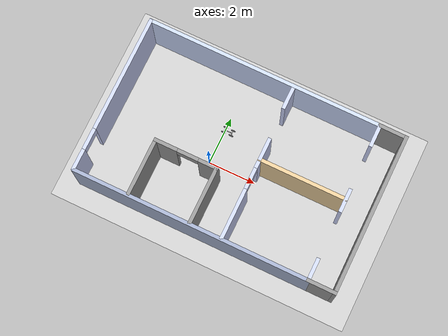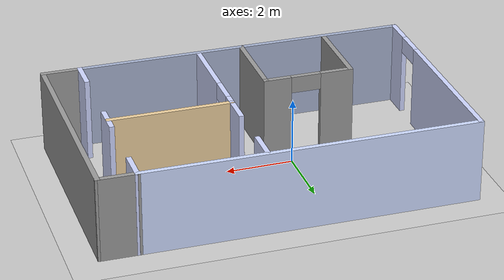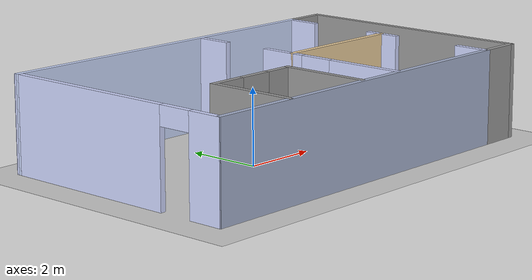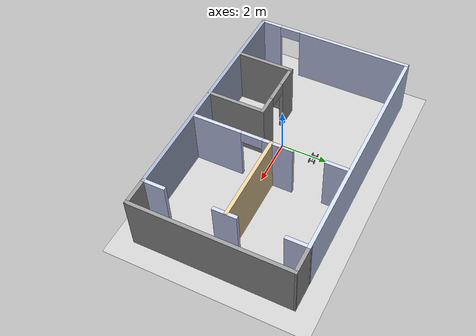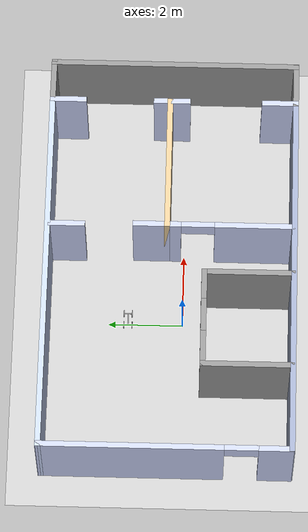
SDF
<sdf version="1.6">
 <world name="default">
  <model name="ground_plane">
   <static>1</static>
   <link name="link">
    <collision name="collision">
     <geometry><plane><normal>0 0 1</normal><size>100 100</size></plane></geometry>
     <surface><friction><ode><mu>100</mu><mu2>50</mu2></ode></friction></surface>
    </collision>
    <visual name="visual">
     <cast_shadows>0</cast_shadows>
     <geometry><plane><normal>0 0 1</normal><size>100 100</size></plane></geometry>
     <material>
      <script><uri>file://media/materials/scripts/gazebo.material</uri><name>Gazebo/Grey</name></script>
     </material>
    </visual>
   </link>
  </model>
  <model name="mybuilding">
   <pose>1.20558 0.366054 0 0 -0 0</pose>
   <link name="Wall_0">
    <collision name="Wall_0_Collision">
     <geometry><box><size>10.02 0.15 2.5</size></box></geometry>
     <pose>0 0 1.25 0 -0 0</pose>
    </collision>
    <visual name="Wall_0_Visual">
     <pose>0 0 1.25 0 -0 0</pose>
     <geometry><box><size>10.02 0.15 2.5</size></box></geometry>
     <material>
      <script><uri>file://media/materials/scripts/gazebo.material</uri><name>Gazebo/Grey</name></script>
      <ambient>0.803922 0.858824 1 1</ambient>
     </material>
     <meta><layer>0</layer></meta>
    </visual>
    <pose>-0.550236 3.30489 0 0 0 -0.003082</pose>
   </link>
   <link name="Wall_1">
    <collision name="Wall_1_Collision">
     <geometry><box><size>1 0.15 2.5</size></box></geometry>
     <pose>0 0 1.25 0 -0 0</pose>
    </collision>
    <visual name="Wall_1_Visual">
     <pose>0 0 1.25 0 -0 0</pose>
     <geometry><box><size>1 0.15 2.5</size></box></geometry>
     <material>
      <script><uri>file://media/materials/scripts/gazebo.material</uri><name>Gazebo/Grey</name></script>
      <ambient>0.811765 0.843137 1 1</ambient>
     </material>
     <meta><layer>0</layer></meta>
    </visual>
    <pose>4.38476 2.86468 0 0 0 -1.5708</pose>
   </link>
   <link name="Wall_12">
    <collision name="Wall_12_Collision">
     <geometry><box><size>1 0.15 2.5</size></box></geometry>
     <pose>0 0 1.25 0 -0 0</pose>
    </collision>
    <visual name="Wall_12_Visual">
     <pose>0 0 1.25 0 -0 0</pose>
     <geometry><box><size>1 0.15 2.5</size></box></geometry>
     <material>
      <script><uri>file://media/materials/scripts/gazebo.material</uri><name>Gazebo/Grey</name></script>
      <ambient>0.811765 0.843137 1 1</ambient>
     </material>
     <meta><layer>0</layer></meta>
    </visual>
    <pose>4.38476 -2.89532 0 0 0 -1.5708</pose>
   </link>
   <link name="Wall_14">
    <collision name="Wall_14_Collision">
     <geometry><box><size>10 0.15 2.5</size></box></geometry>
     <pose>0 0 1.25 0 -0 0</pose>
    </collision>
    <visual name="Wall_14_Visual">
     <pose>0 0 1.25 0 -0 0</pose>
     <geometry><box><size>10 0.15 2.5</size></box></geometry>
     <material>
      <script><uri>file://media/materials/scripts/gazebo.material</uri><name>Gazebo/Grey</name></script>
      <ambient>0.65098 0.694118 0.807843 1</ambient>
     </material>
     <meta><layer>0</layer></meta>
    </visual>
    <pose>-0.540236 -3.32032 0 0 -0 3.14159</pose>
   </link>
   <link name="Wall_16">
    <collision name="Wall_16_Collision">
     <geometry><box><size>2.5 0.15 2.5</size></box></geometry>
     <pose>0 0 1.25 0 -0 0</pose>
    </collision>
    <visual name="Wall_16_Visual">
     <pose>0 0 1.25 0 -0 0</pose>
     <geometry><box><size>2.5 0.15 2.5</size></box></geometry>
     <material>
      <script><uri>file://media/materials/scripts/gazebo.material</uri><name>Gazebo/Grey</name></script>
      <ambient>1 1 1 1</ambient>
     </material>
     <meta><layer>0</layer></meta>
    </visual>
    <pose>-3.16618 -2.10913 0 0 -0 1.5708</pose>
   </link>
   <link name="Wall_17">
    <pose>-1.86618 -0.934127 0 0 -0 0</pose>
    <visual name="Wall_17_Visual_0">
     <pose>-0.873137 0 1.25 0 -0 0</pose>
     <geometry><box><size>1.00372 0.15 2.5</size></box></geometry>
     <material>
      <script><uri>file://media/materials/scripts/gazebo.material</uri><name>Gazebo/Grey</name></script>
      <ambient>1 1 1 1</ambient>
     </material>
     <meta><layer>0</layer></meta>
    </visual>
    <collision name="Wall_17_Collision_0">
     <geometry><box><size>1.00372 0.15 2.5</size></box></geometry>
     <pose>-0.873137 0 1.25 0 -0 0</pose>
    </collision>
    <visual name="Wall_17_Visual_1">
     <pose>0.951863 0 1.25 0 -0 0</pose>
     <geometry><box><size>0.846275 0.15 2.5</size></box></geometry>
     <material>
      <script><uri>file://media/materials/scripts/gazebo.material</uri><name>Gazebo/Grey</name></script>
      <ambient>1 1 1 1</ambient>
     </material>
     <meta><layer>0</layer></meta>
    </visual>
    <collision name="Wall_17_Collision_1">
     <geometry><box><size>0.846275 0.15 2.5</size></box></geometry>
     <pose>0.951863 0 1.25 0 -0 0</pose>
    </collision>
    <visual name="Wall_17_Visual_2">
     <pose>0.078725 0 2.25 0 -0 0</pose>
     <geometry><box><size>0.9 0.15 0.5</size></box></geometry>
     <material>
      <script><uri>file://media/materials/scripts/gazebo.material</uri><name>Gazebo/Grey</name></script>
      <ambient>1 1 1 1</ambient>
     </material>
     <meta><layer>0</layer></meta>
    </visual>
    <collision name="Wall_17_Collision_2">
     <geometry><box><size>0.9 0.15 0.5</size></box></geometry>
     <pose>0.078725 0 2.25 0 -0 0</pose>
    </collision>
   </link>
   <link name="Wall_18">
    <collision name="Wall_18_Collision">
     <geometry><box><size>2.5 0.15 2.5</size></box></geometry>
     <pose>0 0 1.25 0 -0 0</pose>
    </collision>
    <visual name="Wall_18_Visual">
     <pose>0 0 1.25 0 -0 0</pose>
     <geometry><box><size>2.5 0.15 2.5</size></box></geometry>
     <material>
      <script><uri>file://media/materials/scripts/gazebo.material</uri><name>Gazebo/Grey</name></script>
      <ambient>1 1 1 1</ambient>
     </material>
     <meta><layer>0</layer></meta>
    </visual>
    <pose>-0.566179 -2.10913 0 0 0 -1.5708</pose>
   </link>
   <link name="Wall_20">
    <collision name="Wall_20_Collision">
     <geometry><box><size>3.75 0.15 2.5</size></box></geometry>
     <pose>0 0 1.25 0 -0 0</pose>
    </collision>
    <visual name="Wall_20_Visual">
     <pose>0 0 1.25 0 -0 0</pose>
     <geometry><box><size>3.75 0.15 2.5</size></box></geometry>
     <material>
      <script><uri>file://media/materials/scripts/gazebo.material</uri><name>Gazebo/Grey</name></script>
      <ambient>0.921569 0.807843 0.615686 1</ambient>
     </material>
     <meta><layer>0</layer></meta>
    </visual>
    <pose>2.57204 0.091456 0 0 -0 3.14159</pose>
   </link>
   <link name="Wall_21">
    <pose>0.772038 -1.58354 0 0 0 -1.5708</pose>
    <visual name="Wall_21_Visual_0">
     <pose>-1.52648 0 1.25 0 -0 0</pose>
     <geometry><box><size>0.447033 0.15 2.5</size></box></geometry>
     <material>
      <script><uri>file://media/materials/scripts/gazebo.material</uri><name>Gazebo/Grey</name></script>
      <ambient>0.811765 0.843137 1 1</ambient>
     </material>
     <meta><layer>0</layer></meta>
    </visual>
    <collision name="Wall_21_Collision_0">
     <geometry><box><size>0.447033 0.15 2.5</size></box></geometry>
     <pose>-1.52648 0 1.25 0 -0 0</pose>
    </collision>
    <visual name="Wall_21_Visual_1">
     <pose>0.673516 0 1.25 0 -0 0</pose>
     <geometry><box><size>2.15297 0.15 2.5</size></box></geometry>
     <material>
      <script><uri>file://media/materials/scripts/gazebo.material</uri><name>Gazebo/Grey</name></script>
      <ambient>0.811765 0.843137 1 1</ambient>
     </material>
     <meta><layer>0</layer></meta>
    </visual>
    <collision name="Wall_21_Collision_1">
     <geometry><box><size>2.15297 0.15 2.5</size></box></geometry>
     <pose>0.673516 0 1.25 0 -0 0</pose>
    </collision>
    <visual name="Wall_21_Visual_2">
     <pose>-0.852967 0 2.25 0 -0 0</pose>
     <geometry><box><size>0.9 0.15 0.5</size></box></geometry>
     <material>
      <script><uri>file://media/materials/scripts/gazebo.material</uri><name>Gazebo/Grey</name></script>
      <ambient>0.811765 0.843137 1 1</ambient>
     </material>
     <meta><layer>0</layer></meta>
    </visual>
    <collision name="Wall_21_Collision_2">
     <geometry><box><size>0.9 0.15 0.5</size></box></geometry>
     <pose>-0.852967 0 2.25 0 -0 0</pose>
    </collision>
   </link>
   <link name="Wall_23">
    <collision name="Wall_23_Collision">
     <geometry><box><size>1 0.15 2.5</size></box></geometry>
     <pose>0 0 1.25 0 -0 0</pose>
    </collision>
    <visual name="Wall_23_Visual">
     <pose>0 0 1.25 0 -0 0</pose>
     <geometry><box><size>1 0.15 2.5</size></box></geometry>
     <material>
      <script><uri>file://media/materials/scripts/gazebo.material</uri><name>Gazebo/Grey</name></script>
      <ambient>0.811765 0.843137 1 1</ambient>
     </material>
     <meta><layer>0</layer></meta>
    </visual>
    <pose>0.772038 0.516456 0 0 -0 1.5708</pose>
   </link>
   <link name="Wall_25">
    <collision name="Wall_25_Collision">
     <geometry><box><size>1 0.15 2.5</size></box></geometry>
     <pose>0 0 1.25 0 -0 0</pose>
    </collision>
    <visual name="Wall_25_Visual">
     <pose>0 0 1.25 0 -0 0</pose>
     <geometry><box><size>1 0.15 2.5</size></box></geometry>
     <material>
      <script><uri>file://media/materials/scripts/gazebo.material</uri><name>Gazebo/Grey</name></script>
      <ambient>0.811765 0.843137 1 1</ambient>
     </material>
     <meta><layer>0</layer></meta>
    </visual>
    <pose>0.732868 2.78991 0 0 0 -1.5708</pose>
   </link>
   <link name="Wall_27">
    <collision name="Wall_27_Collision">
     <geometry><box><size>1.25 0.15 2.5</size></box></geometry>
     <pose>0 0 1.25 0 -0 0</pose>
    </collision>
    <visual name="Wall_27_Visual">
     <pose>0 0 1.25 0 -0 0</pose>
     <geometry><box><size>1.25 0.15 2.5</size></box></geometry>
     <material>
      <script><uri>file://media/materials/scripts/gazebo.material</uri><name>Gazebo/Grey</name></script>
      <ambient>1 1 1 1</ambient>
     </material>
     <meta><layer>0</layer></meta>
    </visual>
    <pose>4.93476 -3.32032 0 0 -0 0</pose>
   </link>
   <link name="Wall_28">
    <collision name="Wall_28_Collision">
     <geometry><box><size>6.75 0.15 2.5</size></box></geometry>
     <pose>0 0 1.25 0 -0 0</pose>
    </collision>
    <visual name="Wall_28_Visual">
     <pose>0 0 1.25 0 -0 0</pose>
     <geometry><box><size>6.75 0.15 2.5</size></box></geometry>
     <material>
      <script><uri>file://media/materials/scripts/gazebo.material</uri><name>Gazebo/Grey</name></script>
      <ambient>1 1 1 1</ambient>
     </material>
     <meta><layer>0</layer></meta>
    </visual>
    <pose>5.48476 -0.020324 0 0 -0 1.5708</pose>
   </link>
   <link name="Wall_29">
    <collision name="Wall_29_Collision">
     <geometry><box><size>1.25005 0.15 2.5</size></box></geometry>
     <pose>0 0 1.25 0 -0 0</pose>
    </collision>
    <visual name="Wall_29_Visual">
     <pose>0 0 1.25 0 -0 0</pose>
     <geometry><box><size>1.25005 0.15 2.5</size></box></geometry>
     <material>
      <script><uri>file://media/materials/scripts/gazebo.material</uri><name>Gazebo/Grey</name></script>
      <ambient>1 1 1 1</ambient>
     </material>
     <meta><layer>0</layer></meta>
    </visual>
    <pose>4.93476 3.28468 0 0 -0 3.1325</pose>
   </link>
   <link name="Wall_4">
    <collision name="Wall_4_Collision">
     <geometry><box><size>1 0.15 2.5</size></box></geometry>
     <pose>0 0 1.25 0 -0 0</pose>
    </collision>
    <visual name="Wall_4_Visual">
     <pose>0 0 1.25 0 -0 0</pose>
     <geometry><box><size>1 0.15 2.5</size></box></geometry>
     <material>
      <script><uri>file://media/materials/scripts/gazebo.material</uri><name>Gazebo/Grey</name></script>
      <ambient>0.811765 0.843137 1 1</ambient>
     </material>
     <meta><layer>0</layer></meta>
    </visual>
    <pose>4.38476 0.040676 0 0 0 -1.5708</pose>
   </link>
   <link name="Wall_7">
    <pose>-5.48524 0.004885 0 0 0 -1.5708</pose>
    <visual name="Wall_7_Visual_0">
     <pose>-0.910605 0 1.25 0 -0 0</pose>
     <geometry><box><size>4.92879 0.15 2.5</size></box></geometry>
     <material>
      <script><uri>file://media/materials/scripts/gazebo.material</uri><name>Gazebo/Grey</name></script>
      <ambient>0.811765 0.843137 1 1</ambient>
     </material>
     <meta><layer>0</layer></meta>
    </visual>
    <collision name="Wall_7_Collision_0">
     <geometry><box><size>4.92879 0.15 2.5</size></box></geometry>
     <pose>-0.910605 0 1.25 0 -0 0</pose>
    </collision>
    <visual name="Wall_7_Visual_1">
     <pose>2.91439 0 1.25 0 -0 0</pose>
     <geometry><box><size>0.92121 0.15 2.5</size></box></geometry>
     <material>
      <script><uri>file://media/materials/scripts/gazebo.material</uri><name>Gazebo/Grey</name></script>
      <ambient>0.811765 0.843137 1 1</ambient>
     </material>
     <meta><layer>0</layer></meta>
    </visual>
    <collision name="Wall_7_Collision_1">
     <geometry><box><size>0.92121 0.15 2.5</size></box></geometry>
     <pose>2.91439 0 1.25 0 -0 0</pose>
    </collision>
    <visual name="Wall_7_Visual_2">
     <pose>2.00379 0 2.25 0 -0 0</pose>
     <geometry><box><size>0.9 0.15 0.5</size></box></geometry>
     <material>
      <script><uri>file://media/materials/scripts/gazebo.material</uri><name>Gazebo/Grey</name></script>
      <ambient>0.811765 0.843137 1 1</ambient>
     </material>
     <meta><layer>0</layer></meta>
    </visual>
    <collision name="Wall_7_Collision_2">
     <geometry><box><size>0.9 0.15 0.5</size></box></geometry>
     <pose>2.00379 0 2.25 0 -0 0</pose>
    </collision>
   </link>
   <static>1</static>
  </model>
  <model name="mycar2">
   <link name="link_2_clone">
    <pose>-0.030624 0.173413 0 1.5707 -0 0</pose>
    <inertial>
     <mass>1</mass>
     <inertia><ixx>0.145833</ixx><ixy>0</ixy><ixz>0</ixz><iyy>0.145833</iyy><iyz>0</iyz><izz>0.125</izz></inertia>
    </inertial>
    <visual name="visual">
     <geometry><cylinder><radius>0.1</radius><length>0.02</length></cylinder></geometry>
     <material>
      <lighting>1</lighting>
      <script><uri>file://media/materials/scripts/gazebo.material</uri><name>Gazebo/Grey</name></script>
      <shader type="pixel"><normal_map>__default__</normal_map></shader>
      <ambient>0.3 0.3 0.3 1</ambient>
      <diffuse>0.7 0.7 0.7 1</diffuse>
      <specular>0.01 0.01 0.01 1</specular>
      <emissive>0 0 0 1</emissive>
     </material>
    </visual>
    <collision name="collision">
     <geometry><cylinder><radius>0.1</radius><length>0.02</length></cylinder></geometry>
     <surface>
      <friction>
       <ode><mu>1</mu><mu2>1</mu2><fdir1>0 0 0</fdir1><slip1>0</slip1><slip2>0</slip2></ode>
       <torsional>
        <coefficient>1</coefficient>
        <patch_radius>0</patch_radius>
        <surface_radius>0</surface_radius>
        <use_patch_radius>1</use_patch_radius>
        <ode><slip>0</slip></ode>
       </torsional>
      </friction>
      <bounce><restitution_coefficient>0</restitution_coefficient><threshold>1e+06</threshold></bounce>
      <contact>
       <collide_without_contact>0</collide_without_contact>
       <collide_without_contact_bitmask>1</collide_without_contact_bitmask>
       <collide_bitmask>1</collide_bitmask>
       <ode>
        <soft_cfm>0</soft_cfm>
        <soft_erp>0.2</soft_erp>
        <kp>1e+13</kp>
        <kd>1</kd>
        <max_vel>0.01</max_vel>
        <min_depth>0</min_depth>
       </ode>
       <bullet>
        <split_impulse>1</split_impulse>
        <split_impulse_penetration_threshold>-0.01</split_impulse_penetration_threshold>
        <soft_cfm>0</soft_cfm>
        <soft_erp>0.2</soft_erp>
        <kp>1e+13</kp>
        <kd>1</kd>
       </bullet>
      </contact>
     </surface>
    </collision>
   </link>
   <link name="link_2_clone_0">
    <pose>0.2994 -0.046607 0 1.5707 -0 0</pose>
    <inertial>
     <mass>1</mass>
     <inertia><ixx>0.145833</ixx><ixy>0</ixy><ixz>0</ixz><iyy>0.145833</iyy><iyz>0</iyz><izz>0.125</izz></inertia>
    </inertial>
    <visual name="visual">
     <geometry><cylinder><radius>0.1</radius><length>0.02</length></cylinder></geometry>
     <material>
      <lighting>1</lighting>
      <script><uri>file://media/materials/scripts/gazebo.material</uri><name>Gazebo/Grey</name></script>
      <shader type="pixel"><normal_map>__default__</normal_map></shader>
      <ambient>0.3 0.3 0.3 1</ambient>
      <diffuse>0.7 0.7 0.7 1</diffuse>
      <specular>0.01 0.01 0.01 1</specular>
      <emissive>0 0 0 1</emissive>
     </material>
    </visual>
    <collision name="collision">
     <geometry><cylinder><radius>0.1</radius><length>0.02</length></cylinder></geometry>
     <surface>
      <friction>
       <ode><mu>1</mu><mu2>1</mu2><fdir1>0 0 0</fdir1><slip1>0</slip1><slip2>0</slip2></ode>
       <torsional>
        <coefficient>1</coefficient>
        <patch_radius>0</patch_radius>
        <surface_radius>0</surface_radius>
        <use_patch_radius>1</use_patch_radius>
        <ode><slip>0</slip></ode>
       </torsional>
      </friction>
      <bounce><restitution_coefficient>0</restitution_coefficient><threshold>1e+06</threshold></bounce>
      <contact>
       <collide_without_contact>0</collide_without_contact>
       <collide_without_contact_bitmask>1</collide_without_contact_bitmask>
       <collide_bitmask>1</collide_bitmask>
       <ode>
        <soft_cfm>0</soft_cfm>
        <soft_erp>0.2</soft_erp>
        <kp>1e+13</kp>
        <kd>1</kd>
        <max_vel>0.01</max_vel>
        <min_depth>0</min_depth>
       </ode>
       <bullet>
        <split_impulse>1</split_impulse>
        <split_impulse_penetration_threshold>-0.01</split_impulse_penetration_threshold>
        <soft_cfm>0</soft_cfm>
        <soft_erp>0.2</soft_erp>
        <kp>1e+13</kp>
        <kd>1</kd>
       </bullet>
      </contact>
     </surface>
    </collision>
   </link>
   <link name="link_2_clone_1">
    <pose>0.2994 0.173413 0 1.5707 -0 0</pose>
    <inertial>
     <mass>1</mass>
     <inertia><ixx>0.145833</ixx><ixy>0</ixy><ixz>0</ixz><iyy>0.145833</iyy><iyz>0</iyz><izz>0.125</izz></inertia>
    </inertial>
    <visual name="visual">
     <geometry><cylinder><radius>0.1</radius><length>0.02</length></cylinder></geometry>
     <material>
      <lighting>1</lighting>
      <script><uri>file://media/materials/scripts/gazebo.material</uri><name>Gazebo/Grey</name></script>
      <shader type="pixel"><normal_map>__default__</normal_map></shader>
      <ambient>0.3 0.3 0.3 1</ambient>
      <diffuse>0.7 0.7 0.7 1</diffuse>
      <specular>0.01 0.01 0.01 1</specular>
      <emissive>0 0 0 1</emissive>
     </material>
    </visual>
    <collision name="collision">
     <geometry><cylinder><radius>0.1</radius><length>0.02</length></cylinder></geometry>
     <surface>
      <friction>
       <ode><mu>1</mu><mu2>1</mu2><fdir1>0 0 0</fdir1><slip1>0</slip1><slip2>0</slip2></ode>
       <torsional>
        <coefficient>1</coefficient>
        <patch_radius>0</patch_radius>
        <surface_radius>0</surface_radius>
        <use_patch_radius>1</use_patch_radius>
        <ode><slip>0</slip></ode>
       </torsional>
      </friction>
      <bounce><restitution_coefficient>0</restitution_coefficient><threshold>1e+06</threshold></bounce>
      <contact>
       <collide_without_contact>0</collide_without_contact>
       <collide_without_contact_bitmask>1</collide_without_contact_bitmask>
       <collide_bitmask>1</collide_bitmask>
       <ode>
        <soft_cfm>0</soft_cfm>
        <soft_erp>0.2</soft_erp>
        <kp>1e+13</kp>
        <kd>1</kd>
        <max_vel>0.01</max_vel>
        <min_depth>0</min_depth>
       </ode>
       <bullet>
        <split_impulse>1</split_impulse>
        <split_impulse_penetration_threshold>-0.01</split_impulse_penetration_threshold>
        <soft_cfm>0</soft_cfm>
        <soft_erp>0.2</soft_erp>
        <kp>1e+13</kp>
        <kd>1</kd>
       </bullet>
      </contact>
     </surface>
    </collision>
   </link>
   <link name="link_2_clone_clone">
    <pose>-0.030624 -0.046607 0 1.5707 -0 0</pose>
    <inertial>
     <mass>1</mass>
     <inertia><ixx>0.145833</ixx><ixy>0</ixy><ixz>0</ixz><iyy>0.145833</iyy><iyz>0</iyz><izz>0.125</izz></inertia>
    </inertial>
    <visual name="visual">
     <geometry><cylinder><radius>0.1</radius><length>0.02</length></cylinder></geometry>
     <material>
      <lighting>1</lighting>
      <script><uri>file://media/materials/scripts/gazebo.material</uri><name>Gazebo/Grey</name></script>
      <shader type="pixel"><normal_map>__default__</normal_map></shader>
      <ambient>0.3 0.3 0.3 1</ambient>
      <diffuse>0.7 0.7 0.7 1</diffuse>
      <specular>0.01 0.01 0.01 1</specular>
      <emissive>0 0 0 1</emissive>
     </material>
    </visual>
    <collision name="collision">
     <geometry><cylinder><radius>0.1</radius><length>0.02</length></cylinder></geometry>
     <surface>
      <friction>
       <ode><mu>1</mu><mu2>1</mu2><fdir1>0 0 0</fdir1><slip1>0</slip1><slip2>0</slip2></ode>
       <torsional>
        <coefficient>1</coefficient>
        <patch_radius>0</patch_radius>
        <surface_radius>0</surface_radius>
        <use_patch_radius>1</use_patch_radius>
        <ode><slip>0</slip></ode>
       </torsional>
      </friction>
      <bounce><restitution_coefficient>0</restitution_coefficient><threshold>1e+06</threshold></bounce>
      <contact>
       <collide_without_contact>0</collide_without_contact>
       <collide_without_contact_bitmask>1</collide_without_contact_bitmask>
       <collide_bitmask>1</collide_bitmask>
       <ode>
        <soft_cfm>0</soft_cfm>
        <soft_erp>0.2</soft_erp>
        <kp>1e+13</kp>
        <kd>1</kd>
        <max_vel>0.01</max_vel>
        <min_depth>0</min_depth>
       </ode>
       <bullet>
        <split_impulse>1</split_impulse>
        <split_impulse_penetration_threshold>-0.01</split_impulse_penetration_threshold>
        <soft_cfm>0</soft_cfm>
        <soft_erp>0.2</soft_erp>
        <kp>1e+13</kp>
        <kd>1</kd>
       </bullet>
      </contact>
     </surface>
    </collision>
   </link>
   <link name="link_3_clone">
    <pose>0.134388 0.063403 0 0 -0 1.57</pose>
    <inertial>
     <mass>1</mass>
     <inertia>
      <ixx>0.166667</ixx>
      <ixy>0</ixy>
      <ixz>0</ixz>
      <iyy>0.166667</iyy>
      <iyz>0</iyz>
      <izz>0.166667</izz>
     </inertia>
    </inertial>
    <visual name="visual">
     <geometry><box><size>0.03 0.3 0.01</size></box></geometry>
     <material>
      <lighting>1</lighting>
      <script><uri>file://media/materials/scripts/gazebo.material</uri><name>Gazebo/Grey</name></script>
      <shader type="pixel"><normal_map>__default__</normal_map></shader>
      <ambient>0.3 0.3 0.3 1</ambient>
      <diffuse>0.7 0.7 0.7 1</diffuse>
      <specular>0.01 0.01 0.01 1</specular>
      <emissive>0 0 0 1</emissive>
     </material>
    </visual>
    <collision name="collision">
     <geometry><box><size>0.03 0.3 0.01</size></box></geometry>
     <surface>
      <friction>
       <ode><mu>1</mu><mu2>1</mu2><fdir1>0 0 0</fdir1><slip1>0</slip1><slip2>0</slip2></ode>
       <torsional>
        <coefficient>1</coefficient>
        <patch_radius>0</patch_radius>
        <surface_radius>0</surface_radius>
        <use_patch_radius>1</use_patch_radius>
        <ode><slip>0</slip></ode>
       </torsional>
      </friction>
      <bounce><restitution_coefficient>0</restitution_coefficient><threshold>1e+06</threshold></bounce>
      <contact>
       <collide_without_contact>0</collide_without_contact>
       <collide_without_contact_bitmask>1</collide_without_contact_bitmask>
       <collide_bitmask>1</collide_bitmask>
       <ode>
        <soft_cfm>0</soft_cfm>
        <soft_erp>0.2</soft_erp>
        <kp>1e+13</kp>
        <kd>1</kd>
        <max_vel>0.01</max_vel>
        <min_depth>0</min_depth>
       </ode>
       <bullet>
        <split_impulse>1</split_impulse>
        <split_impulse_penetration_threshold>-0.01</split_impulse_penetration_threshold>
        <soft_cfm>0</soft_cfm>
        <soft_erp>0.2</soft_erp>
        <kp>1e+13</kp>
        <kd>1</kd>
       </bullet>
      </contact>
     </surface>
    </collision>
   </link>
   <link name="link_3_clone_0">
    <pose>0.299404 0.063404 0 0 -0 0</pose>
    <inertial>
     <mass>1</mass>
     <inertia>
      <ixx>0.166667</ixx>
      <ixy>0</ixy>
      <ixz>0</ixz>
      <iyy>0.166667</iyy>
      <iyz>0</iyz>
      <izz>0.166667</izz>
     </inertia>
    </inertial>
    <visual name="visual">
     <geometry><box><size>0.03 0.2 0.01</size></box></geometry>
     <material>
      <lighting>1</lighting>
      <script><uri>file://media/materials/scripts/gazebo.material</uri><name>Gazebo/Grey</name></script>
      <shader type="pixel"><normal_map>__default__</normal_map></shader>
      <ambient>0.3 0.3 0.3 1</ambient>
      <diffuse>0.7 0.7 0.7 1</diffuse>
      <specular>0.01 0.01 0.01 1</specular>
      <emissive>0 0 0 1</emissive>
     </material>
    </visual>
    <collision name="collision">
     <geometry><box><size>0.03 0.2 0.01</size></box></geometry>
     <surface>
      <friction>
       <ode><mu>1</mu><mu2>1</mu2><fdir1>0 0 0</fdir1><slip1>0</slip1><slip2>0</slip2></ode>
       <torsional>
        <coefficient>1</coefficient>
        <patch_radius>0</patch_radius>
        <surface_radius>0</surface_radius>
        <use_patch_radius>1</use_patch_radius>
        <ode><slip>0</slip></ode>
       </torsional>
      </friction>
      <bounce><restitution_coefficient>0</restitution_coefficient><threshold>1e+06</threshold></bounce>
      <contact>
       <collide_without_contact>0</collide_without_contact>
       <collide_without_contact_bitmask>1</collide_without_contact_bitmask>
       <collide_bitmask>1</collide_bitmask>
       <ode>
        <soft_cfm>0</soft_cfm>
        <soft_erp>0.2</soft_erp>
        <kp>1e+13</kp>
        <kd>1</kd>
        <max_vel>0.01</max_vel>
        <min_depth>0</min_depth>
       </ode>
       <bullet>
        <split_impulse>1</split_impulse>
        <split_impulse_penetration_threshold>-0.01</split_impulse_penetration_threshold>
        <soft_cfm>0</soft_cfm>
        <soft_erp>0.2</soft_erp>
        <kp>1e+13</kp>
        <kd>1</kd>
       </bullet>
      </contact>
     </surface>
    </collision>
   </link>
   <link name="link_3_clone_0_clone">
    <pose>-0.030624 0.063403 0 0 -0 0</pose>
    <inertial>
     <mass>1</mass>
     <inertia>
      <ixx>0.166667</ixx>
      <ixy>0</ixy>
      <ixz>0</ixz>
      <iyy>0.166667</iyy>
      <iyz>0</iyz>
      <izz>0.166667</izz>
     </inertia>
    </inertial>
    <visual name="visual">
     <geometry><box><size>0.03 0.2 0.01</size></box></geometry>
     <material>
      <lighting>1</lighting>
      <script><uri>file://media/materials/scripts/gazebo.material</uri><name>Gazebo/Grey</name></script>
      <shader type="pixel"><normal_map>__default__</normal_map></shader>
      <ambient>0.3 0.3 0.3 1</ambient>
      <diffuse>0.7 0.7 0.7 1</diffuse>
      <specular>0.01 0.01 0.01 1</specular>
      <emissive>0 0 0 1</emissive>
     </material>
    </visual>
    <collision name="collision">
     <geometry><box><size>0.03 0.2 0.01</size></box></geometry>
     <surface>
      <friction>
       <ode><mu>1</mu><mu2>1</mu2><fdir1>0 0 0</fdir1><slip1>0</slip1><slip2>0</slip2></ode>
       <torsional>
        <coefficient>1</coefficient>
        <patch_radius>0</patch_radius>
        <surface_radius>0</surface_radius>
        <use_patch_radius>1</use_patch_radius>
        <ode><slip>0</slip></ode>
       </torsional>
      </friction>
      <bounce><restitution_coefficient>0</restitution_coefficient><threshold>1e+06</threshold></bounce>
      <contact>
       <collide_without_contact>0</collide_without_contact>
       <collide_without_contact_bitmask>1</collide_without_contact_bitmask>
       <collide_bitmask>1</collide_bitmask>
       <ode>
        <soft_cfm>0</soft_cfm>
        <soft_erp>0.2</soft_erp>
        <kp>1e+13</kp>
        <kd>1</kd>
        <max_vel>0.01</max_vel>
        <min_depth>0</min_depth>
       </ode>
       <bullet>
        <split_impulse>1</split_impulse>
        <split_impulse_penetration_threshold>-0.01</split_impulse_penetration_threshold>
        <soft_cfm>0</soft_cfm>
        <soft_erp>0.2</soft_erp>
        <kp>1e+13</kp>
        <kd>1</kd>
       </bullet>
      </contact>
     </surface>
    </collision>
   </link>
   <joint name="link_3_clone_0_JOINT_10" type="revolute">
    <parent>link_3_clone_0</parent>
    <child>link_2_clone_0</child>
    <axis>
     <xyz>0 0 1</xyz>
     <use_parent_model_frame>0</use_parent_model_frame>
     <limit>
      <lower>-1.79769e+308</lower>
      <upper>1.79769e+308</upper>
      <effort>-1</effort>
      <velocity>-1</velocity>
     </limit>
     <dynamics>
      <spring_reference>0</spring_reference>
      <spring_stiffness>0</spring_stiffness>
      <damping>0</damping>
     </dynamics>
    </axis>
    <physics>
     <ode><limit><cfm>0</cfm><erp>0.2</erp></limit><suspension><cfm>0</cfm><erp>0.2</erp></suspension></ode>
    </physics>
   </joint>
   <joint name="link_3_clone_0_JOINT_9" type="revolute">
    <parent>link_3_clone_0</parent>
    <child>link_2_clone_1</child>
    <axis>
     <xyz>0 0 1</xyz>
     <use_parent_model_frame>0</use_parent_model_frame>
     <limit>
      <lower>-1.79769e+308</lower>
      <upper>1.79769e+308</upper>
      <effort>-1</effort>
      <velocity>-1</velocity>
     </limit>
     <dynamics>
      <spring_reference>0</spring_reference>
      <spring_stiffness>0</spring_stiffness>
      <damping>0</damping>
     </dynamics>
    </axis>
    <physics>
     <ode><limit><cfm>0</cfm><erp>0.2</erp></limit><suspension><cfm>0</cfm><erp>0.2</erp></suspension></ode>
    </physics>
   </joint>
   <joint name="link_3_clone_0_clone_JOINT_14" type="revolute">
    <parent>link_3_clone_0_clone</parent>
    <child>link_2_clone</child>
    <axis>
     <xyz>0 0 1</xyz>
     <use_parent_model_frame>0</use_parent_model_frame>
     <limit>
      <lower>-1.79769e+308</lower>
      <upper>1.79769e+308</upper>
      <effort>-1</effort>
      <velocity>-1</velocity>
     </limit>
     <dynamics>
      <spring_reference>0</spring_reference>
      <spring_stiffness>0</spring_stiffness>
      <damping>0</damping>
     </dynamics>
    </axis>
    <physics>
     <ode><limit><cfm>0</cfm><erp>0.2</erp></limit><suspension><cfm>0</cfm><erp>0.2</erp></suspension></ode>
    </physics>
   </joint>
   <joint name="link_3_clone_0_clone_JOINT_16" type="revolute">
    <parent>link_3_clone_0_clone</parent>
    <child>link_2_clone_clone</child>
    <axis>
     <xyz>0 0 1</xyz>
     <use_parent_model_frame>0</use_parent_model_frame>
     <limit>
      <lower>-1.79769e+308</lower>
      <upper>1.79769e+308</upper>
      <effort>-1</effort>
      <velocity>-1</velocity>
     </limit>
     <dynamics>
      <spring_reference>0</spring_reference>
      <spring_stiffness>0</spring_stiffness>
      <damping>0</damping>
     </dynamics>
    </axis>
    <physics>
     <ode><limit><cfm>0</cfm><erp>0.2</erp></limit><suspension><cfm>0</cfm><erp>0.2</erp></suspension></ode>
    </physics>
   </joint>
   <joint name="link_3_clone_JOINT_13" type="fixed">
    <parent>link_3_clone</parent>
    <child>link_3_clone_0_clone</child>
    <physics>
     <ode><limit><cfm>0</cfm><erp>0.2</erp></limit><suspension><cfm>0</cfm><erp>0.2</erp></suspension></ode>
    </physics>
   </joint>
   <joint name="link_3_clone_JOINT_6" type="fixed">
    <parent>link_3_clone</parent>
    <child>link_3_clone_0</child>
    <physics>
     <ode><limit><cfm>0</cfm><erp>0.2</erp></limit><suspension><cfm>0</cfm><erp>0.2</erp></suspension></ode>
    </physics>
   </joint>
   <static>0</static>
   <pose>-0.003609 1.41366 0.1 0 -0 0</pose>
  </model>
 </world>
</sdf>
